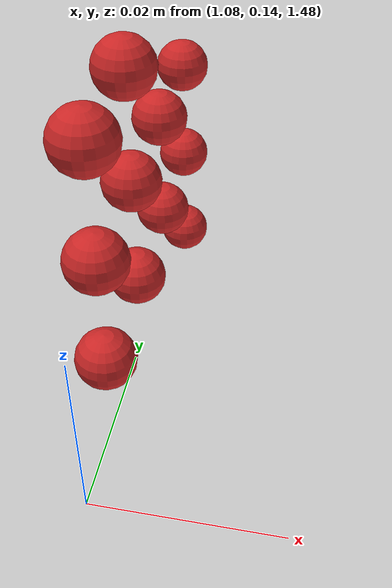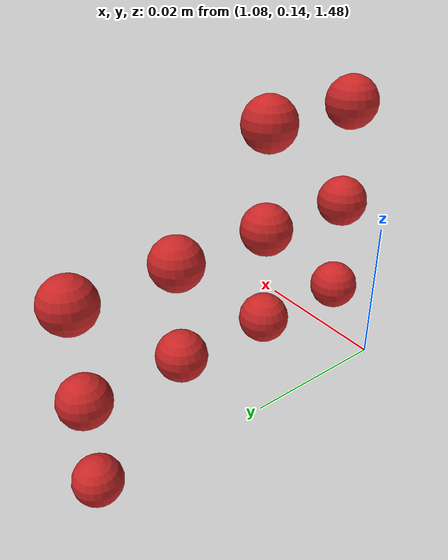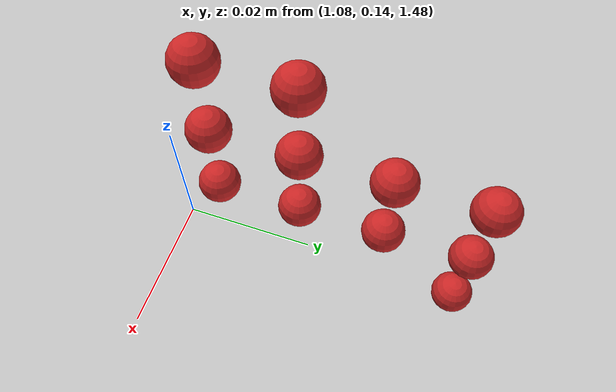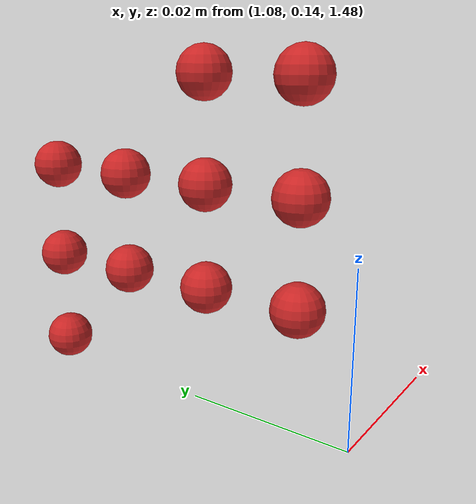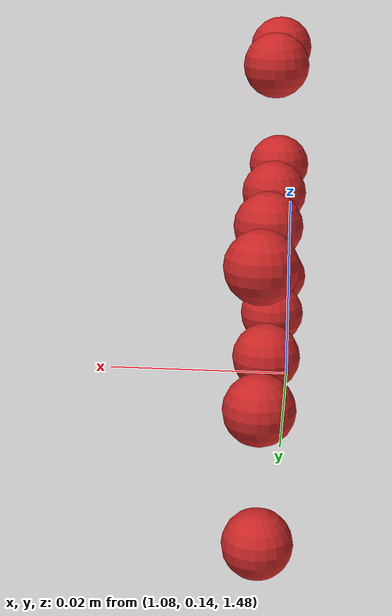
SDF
<sdf version="1.4">
 <world name="default">
  <model name="ground_plane">
   <static>1</static>
   <link name="link">
    <collision name="collision">
     <geometry><plane><normal>0 0 1</normal><size>100 100</size></plane></geometry>
     <surface><friction><ode><mu>100</mu><mu2>50</mu2></ode></friction></surface>
    </collision>
    <visual name="visual">
     <cast_shadows>0</cast_shadows>
     <geometry><plane><normal>0 0 1</normal><size>100 100</size></plane></geometry>
     <material>
      <script><uri>file://media/materials/scripts/gazebo.material</uri><name>Gazebo/Grey</name></script>
     </material>
    </visual>
    <velocity_decay><linear>0</linear><angular>0</angular></velocity_decay>
   </link>
  </model>
  <model name="sphere28">
   <pose>0.546545 0.097517 0.740885 0 0 0</pose>
   <link name="link">
    <pose>0.534545 0.085517 0.740885 0 0 0</pose>
    <inertial>
     <mass>0.001</mass>
     <inertia>
      <ixx>0.004</ixx>
      <ixy>0.000000</ixy>
      <ixz>0.000000</ixz>
      <iyy>0.004</iyy>
      <iyz>0.000000</iyz>
      <izz>0.004</izz>
     </inertia>
    </inertial>
    <collision name="collision">
     <surface>
      <contact><ode><kp>10000000000.000000</kp><kd>1</kd></ode></contact>
      <friction><ode><mu>0.01</mu><mu2>0.01</mu2></ode></friction>
     </surface>
     <geometry><sphere><radius>0.003</radius></sphere></geometry>
    </collision>
    <visual name="visual">
     <geometry><sphere><radius>0.003</radius></sphere></geometry>
     <material>
      <script><uri>file://media/materials/scripts/gazebo.material</uri><name>Gazebo/Red</name></script>
     </material>
    </visual>
   </link>
  </model>
  <model name="sphere32">
   <pose>0.546545 0.079517 0.746885 0 0 0</pose>
   <link name="link">
    <pose>0.534545 0.067517 0.746885 0 0 0</pose>
    <inertial>
     <mass>0.001</mass>
     <inertia>
      <ixx>0.004</ixx>
      <ixy>0.000000</ixy>
      <ixz>0.000000</ixz>
      <iyy>0.004</iyy>
      <iyz>0.000000</iyz>
      <izz>0.004</izz>
     </inertia>
    </inertial>
    <collision name="collision">
     <surface>
      <contact><ode><kp>10000000000.000000</kp><kd>1</kd></ode></contact>
      <friction><ode><mu>0.01</mu><mu2>0.01</mu2></ode></friction>
     </surface>
     <geometry><sphere><radius>0.003</radius></sphere></geometry>
    </collision>
    <visual name="visual">
     <geometry><sphere><radius>0.003</radius></sphere></geometry>
     <material>
      <script><uri>file://media/materials/scripts/gazebo.material</uri><name>Gazebo/Red</name></script>
     </material>
    </visual>
   </link>
  </model>
  <model name="sphere36">
   <pose>0.546545 0.085517 0.746885 0 0 0</pose>
   <link name="link">
    <pose>0.534545 0.073517 0.746885 0 0 0</pose>
    <inertial>
     <mass>0.001</mass>
     <inertia>
      <ixx>0.004</ixx>
      <ixy>0.000000</ixy>
      <ixz>0.000000</ixz>
      <iyy>0.004</iyy>
      <iyz>0.000000</iyz>
      <izz>0.004</izz>
     </inertia>
    </inertial>
    <collision name="collision">
     <surface>
      <contact><ode><kp>10000000000.000000</kp><kd>1</kd></ode></contact>
      <friction><ode><mu>0.01</mu><mu2>0.01</mu2></ode></friction>
     </surface>
     <geometry><sphere><radius>0.003</radius></sphere></geometry>
    </collision>
    <visual name="visual">
     <geometry><sphere><radius>0.003</radius></sphere></geometry>
     <material>
      <script><uri>file://media/materials/scripts/gazebo.material</uri><name>Gazebo/Red</name></script>
     </material>
    </visual>
   </link>
  </model>
  <model name="sphere40">
   <pose>0.546545 0.091517 0.746885 0 0 0</pose>
   <link name="link">
    <pose>0.534545 0.079517 0.746885 0 0 0</pose>
    <inertial>
     <mass>0.001</mass>
     <inertia>
      <ixx>0.004</ixx>
      <ixy>0.000000</ixy>
      <ixz>0.000000</ixz>
      <iyy>0.004</iyy>
      <iyz>0.000000</iyz>
      <izz>0.004</izz>
     </inertia>
    </inertial>
    <collision name="collision">
     <surface>
      <contact><ode><kp>10000000000.000000</kp><kd>1</kd></ode></contact>
      <friction><ode><mu>0.01</mu><mu2>0.01</mu2></ode></friction>
     </surface>
     <geometry><sphere><radius>0.003</radius></sphere></geometry>
    </collision>
    <visual name="visual">
     <geometry><sphere><radius>0.003</radius></sphere></geometry>
     <material>
      <script><uri>file://media/materials/scripts/gazebo.material</uri><name>Gazebo/Red</name></script>
     </material>
    </visual>
   </link>
  </model>
  <model name="sphere44">
   <pose>0.546545 0.097517 0.746885 0 0 0</pose>
   <link name="link">
    <pose>0.534545 0.085517 0.746885 0 0 0</pose>
    <inertial>
     <mass>0.001</mass>
     <inertia>
      <ixx>0.004</ixx>
      <ixy>0.000000</ixy>
      <ixz>0.000000</ixz>
      <iyy>0.004</iyy>
      <iyz>0.000000</iyz>
      <izz>0.004</izz>
     </inertia>
    </inertial>
    <collision name="collision">
     <surface>
      <contact><ode><kp>10000000000.000000</kp><kd>1</kd></ode></contact>
      <friction><ode><mu>0.01</mu><mu2>0.01</mu2></ode></friction>
     </surface>
     <geometry><sphere><radius>0.003</radius></sphere></geometry>
    </collision>
    <visual name="visual">
     <geometry><sphere><radius>0.003</radius></sphere></geometry>
     <material>
      <script><uri>file://media/materials/scripts/gazebo.material</uri><name>Gazebo/Red</name></script>
     </material>
    </visual>
   </link>
  </model>
  <model name="sphere48">
   <pose>0.546545 0.079517 0.752885 0 0 0</pose>
   <link name="link">
    <pose>0.534545 0.067517 0.752885 0 0 0</pose>
    <inertial>
     <mass>0.001</mass>
     <inertia>
      <ixx>0.004</ixx>
      <ixy>0.000000</ixy>
      <ixz>0.000000</ixz>
      <iyy>0.004</iyy>
      <iyz>0.000000</iyz>
      <izz>0.004</izz>
     </inertia>
    </inertial>
    <collision name="collision">
     <surface>
      <contact><ode><kp>10000000000.000000</kp><kd>1</kd></ode></contact>
      <friction><ode><mu>0.01</mu><mu2>0.01</mu2></ode></friction>
     </surface>
     <geometry><sphere><radius>0.003</radius></sphere></geometry>
    </collision>
    <visual name="visual">
     <geometry><sphere><radius>0.003</radius></sphere></geometry>
     <material>
      <script><uri>file://media/materials/scripts/gazebo.material</uri><name>Gazebo/Red</name></script>
     </material>
    </visual>
   </link>
  </model>
  <model name="sphere52">
   <pose>0.546545 0.085517 0.752885 0 0 0</pose>
   <link name="link">
    <pose>0.534545 0.073517 0.752885 0 0 0</pose>
    <inertial>
     <mass>0.001</mass>
     <inertia>
      <ixx>0.004</ixx>
      <ixy>0.000000</ixy>
      <ixz>0.000000</ixz>
      <iyy>0.004</iyy>
      <iyz>0.000000</iyz>
      <izz>0.004</izz>
     </inertia>
    </inertial>
    <collision name="collision">
     <surface>
      <contact><ode><kp>10000000000.000000</kp><kd>1</kd></ode></contact>
      <friction><ode><mu>0.01</mu><mu2>0.01</mu2></ode></friction>
     </surface>
     <geometry><sphere><radius>0.003</radius></sphere></geometry>
    </collision>
    <visual name="visual">
     <geometry><sphere><radius>0.003</radius></sphere></geometry>
     <material>
      <script><uri>file://media/materials/scripts/gazebo.material</uri><name>Gazebo/Red</name></script>
     </material>
    </visual>
   </link>
  </model>
  <model name="sphere56">
   <pose>0.546545 0.091517 0.752885 0 0 0</pose>
   <link name="link">
    <pose>0.534545 0.079517 0.752885 0 0 0</pose>
    <inertial>
     <mass>0.001</mass>
     <inertia>
      <ixx>0.004</ixx>
      <ixy>0.000000</ixy>
      <ixz>0.000000</ixz>
      <iyy>0.004</iyy>
      <iyz>0.000000</iyz>
      <izz>0.004</izz>
     </inertia>
    </inertial>
    <collision name="collision">
     <surface>
      <contact><ode><kp>10000000000.000000</kp><kd>1</kd></ode></contact>
      <friction><ode><mu>0.01</mu><mu2>0.01</mu2></ode></friction>
     </surface>
     <geometry><sphere><radius>0.003</radius></sphere></geometry>
    </collision>
    <visual name="visual">
     <geometry><sphere><radius>0.003</radius></sphere></geometry>
     <material>
      <script><uri>file://media/materials/scripts/gazebo.material</uri><name>Gazebo/Red</name></script>
     </material>
    </visual>
   </link>
  </model>
  <model name="sphere60">
   <pose>0.546545 0.097517 0.752885 0 0 0</pose>
   <link name="link">
    <pose>0.534545 0.085517 0.752885 0 0 0</pose>
    <inertial>
     <mass>0.001</mass>
     <inertia>
      <ixx>0.004</ixx>
      <ixy>0.000000</ixy>
      <ixz>0.000000</ixz>
      <iyy>0.004</iyy>
      <iyz>0.000000</iyz>
      <izz>0.004</izz>
     </inertia>
    </inertial>
    <collision name="collision">
     <surface>
      <contact><ode><kp>10000000000.000000</kp><kd>1</kd></ode></contact>
      <friction><ode><mu>0.01</mu><mu2>0.01</mu2></ode></friction>
     </surface>
     <geometry><sphere><radius>0.003</radius></sphere></geometry>
    </collision>
    <visual name="visual">
     <geometry><sphere><radius>0.003</radius></sphere></geometry>
     <material>
      <script><uri>file://media/materials/scripts/gazebo.material</uri><name>Gazebo/Red</name></script>
     </material>
    </visual>
   </link>
  </model>
  <model name="sphere64">
   <pose>0.546545 0.079517 0.758885 0 0 0</pose>
   <link name="link">
    <pose>0.534545 0.067517 0.758885 0 0 0</pose>
    <inertial>
     <mass>0.001</mass>
     <inertia>
      <ixx>0.004</ixx>
      <ixy>0.000000</ixy>
      <ixz>0.000000</ixz>
      <iyy>0.004</iyy>
      <iyz>0.000000</iyz>
      <izz>0.004</izz>
     </inertia>
    </inertial>
    <collision name="collision">
     <surface>
      <contact><ode><kp>10000000000.000000</kp><kd>1</kd></ode></contact>
      <friction><ode><mu>0.01</mu><mu2>0.01</mu2></ode></friction>
     </surface>
     <geometry><sphere><radius>0.003</radius></sphere></geometry>
    </collision>
    <visual name="visual">
     <geometry><sphere><radius>0.003</radius></sphere></geometry>
     <material>
      <script><uri>file://media/materials/scripts/gazebo.material</uri><name>Gazebo/Red</name></script>
     </material>
    </visual>
   </link>
  </model>
  <model name="sphere68">
   <pose>0.546545 0.085517 0.758885 0 0 0</pose>
   <link name="link">
    <pose>0.534545 0.073517 0.758885 0 0 0</pose>
    <inertial>
     <mass>0.001</mass>
     <inertia>
      <ixx>0.004</ixx>
      <ixy>0.000000</ixy>
      <ixz>0.000000</ixz>
      <iyy>0.004</iyy>
      <iyz>0.000000</iyz>
      <izz>0.004</izz>
     </inertia>
    </inertial>
    <collision name="collision">
     <surface>
      <contact><ode><kp>10000000000.000000</kp><kd>1</kd></ode></contact>
      <friction><ode><mu>0.01</mu><mu2>0.01</mu2></ode></friction>
     </surface>
     <geometry><sphere><radius>0.003</radius></sphere></geometry>
    </collision>
    <visual name="visual">
     <geometry><sphere><radius>0.003</radius></sphere></geometry>
     <material>
      <script><uri>file://media/materials/scripts/gazebo.material</uri><name>Gazebo/Red</name></script>
     </material>
    </visual>
   </link>
  </model>
 </world>
</sdf>
